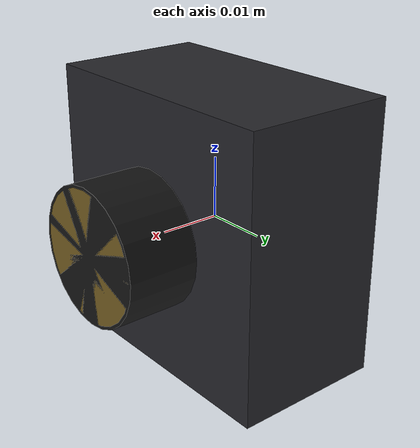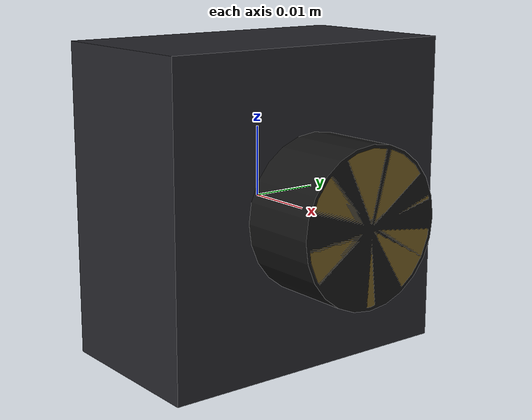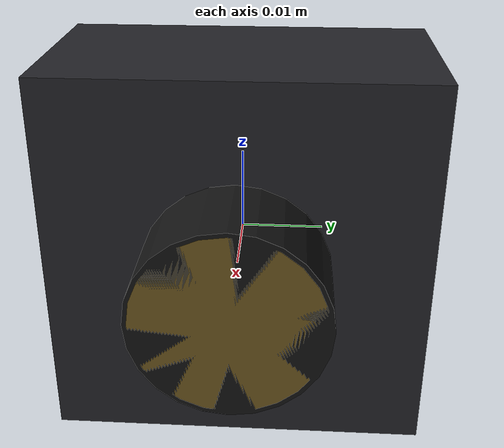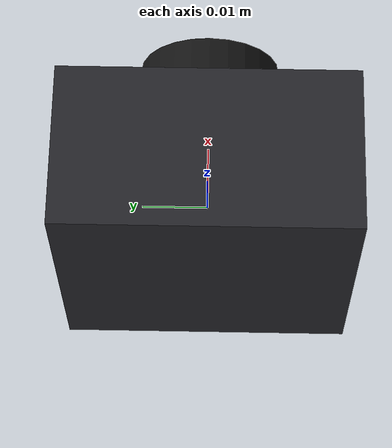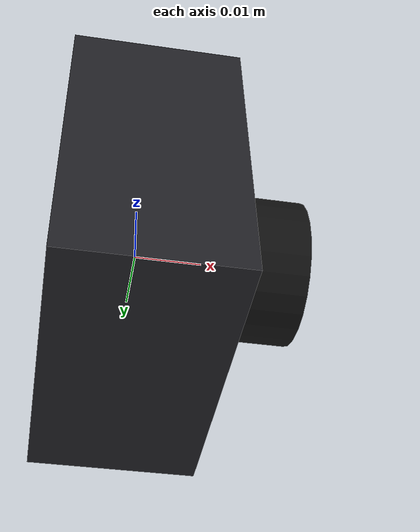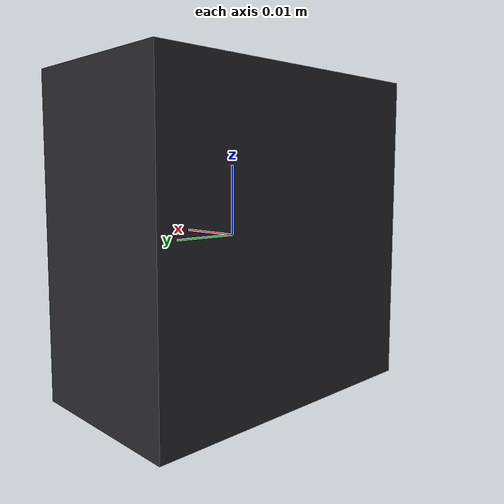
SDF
<?xml version="1.0" encoding="UTF-8"?>
<sdf version='1.9'>
  <model name='thermal_cam'>
    <pose>0 0 0 0 0 0</pose>
    <self_collide>false</self_collide>
    <static>false</static>
    <link name="thermal_camera_link">
      <inertial>
        <pose>0.02 0 0 0 0 0</pose>
        <mass>0.001</mass>
        <inertia>
          <ixx>0.00001</ixx>
          <ixy>0</ixy>
          <ixz>0</ixz>
          <iyy>0.00001</iyy>
          <iyz>0</iyz>
          <izz>0.00001</izz>
        </inertia>
      </inertial>
      <visual name="thermal_cam/visual/housing">
        <geometry>
          <box>
            <size>0.025 0.045 0.045</size>
          </box>
        </geometry>
        <material>
          <ambient>0.15 0.15 0.17 1</ambient>
          <diffuse>0.15 0.15 0.17 1</diffuse>
          <specular>0.2 0.2 0.2 1</specular>
        </material>
      </visual>
      <visual name="thermal_cam/visual/lens">
        <pose>0.018 0 0 0 1.5707 0</pose>
        <geometry>
          <cylinder>
            <radius>0.011</radius>
            <length>0.012</length>
          </cylinder>
        </geometry>
        <material>
          <ambient>0.08 0.08 0.08 1</ambient>
          <diffuse>0.08 0.08 0.08 1</diffuse>
          <specular>0.3 0.3 0.3 1</specular>
        </material>
      </visual>
      <visual name="thermal_cam/visual/lens_glass">
        <pose>0.0235 0 0 0 1.5707 0</pose>
        <geometry>
          <cylinder>
            <radius>0.0105</radius>
            <length>0.001</length>
          </cylinder>
        </geometry>
        <material>
          <ambient>0.35 0.28 0.10 1</ambient>
          <diffuse>0.45 0.36 0.13 1</diffuse>
          <specular>0.9 0.8 0.5 1</specular>
          <emissive>0 0 0 1</emissive>
        </material>
      </visual>

      <sensor name="thermal_camera" type="thermal">
        <gz_frame_id>thermal_camera_link</gz_frame_id>
        <pose>0 0 0 0 0 0</pose>
        <camera>
          <!-- Boson 320 with the 4.3 mm lens: 50 deg HFOV, 320x256 (the real focal
               plane array is 256 rows, not the 240 the gz demo world uses). -->
          <horizontal_fov>0.8727</horizontal_fov>
          <image>
            <width>320</width>
            <height>256</height>
            <!-- L16 -> gz publishes L_INT16, i.e. mono16. See the mapping note below
                 for why this is 16-bit and not the 8-bit the gz demo world uses. -->
            <format>L16</format>
          </image>
          <clip>
            <near>0.1</near>
            <far>3000</far>
          </clip>
        </camera>
        <always_on>1</always_on>
        <update_rate>30</update_rate>
        <visualize>true</visualize>

        <plugin
          filename="gz-sim-thermal-sensor-system"
          name="gz::sim::systems::ThermalSensor">
          <min_temp>253.15</min_temp>
          <max_temp>655.35</max_temp>
          <resolution>0.01</resolution>
        </plugin>
      </sensor>
      <gravity>true</gravity>
      <velocity_decay />
    </link>
  </model>
</sdf>
